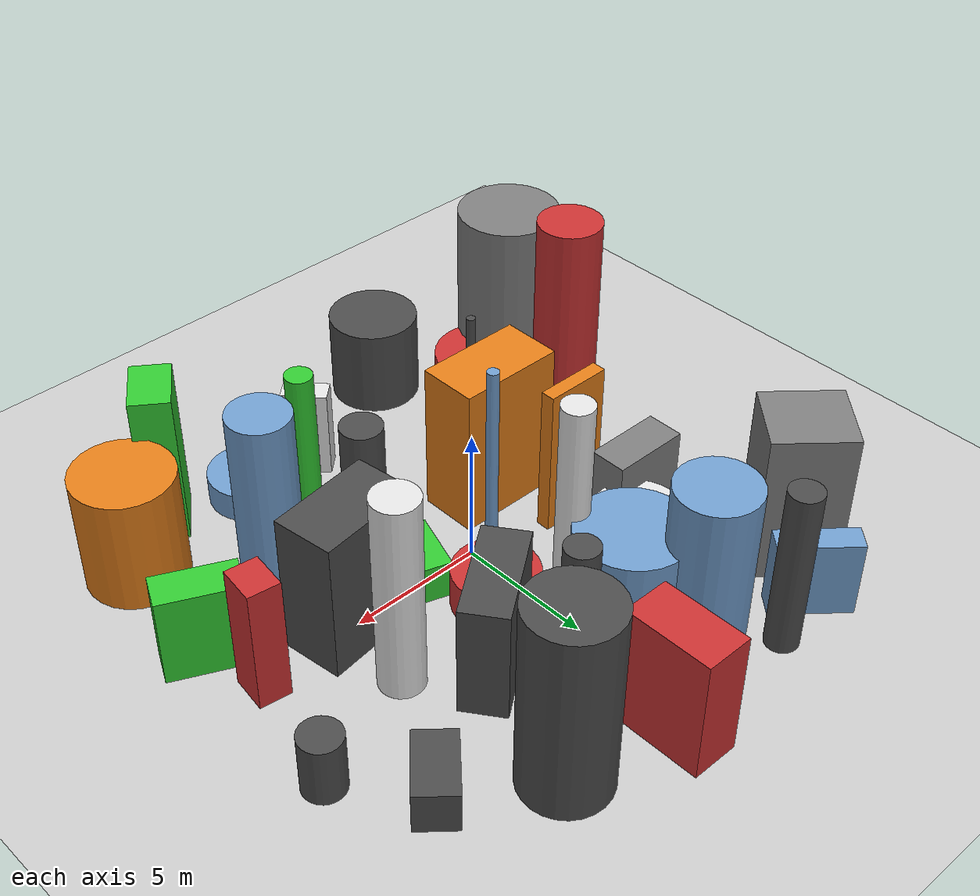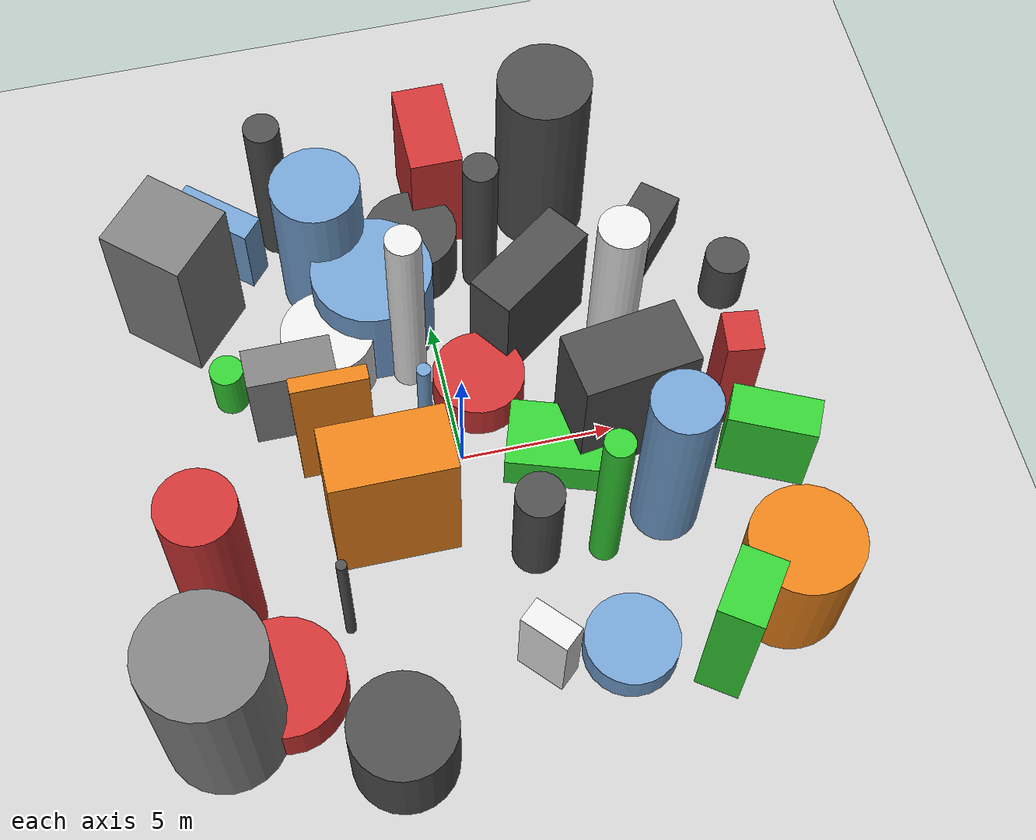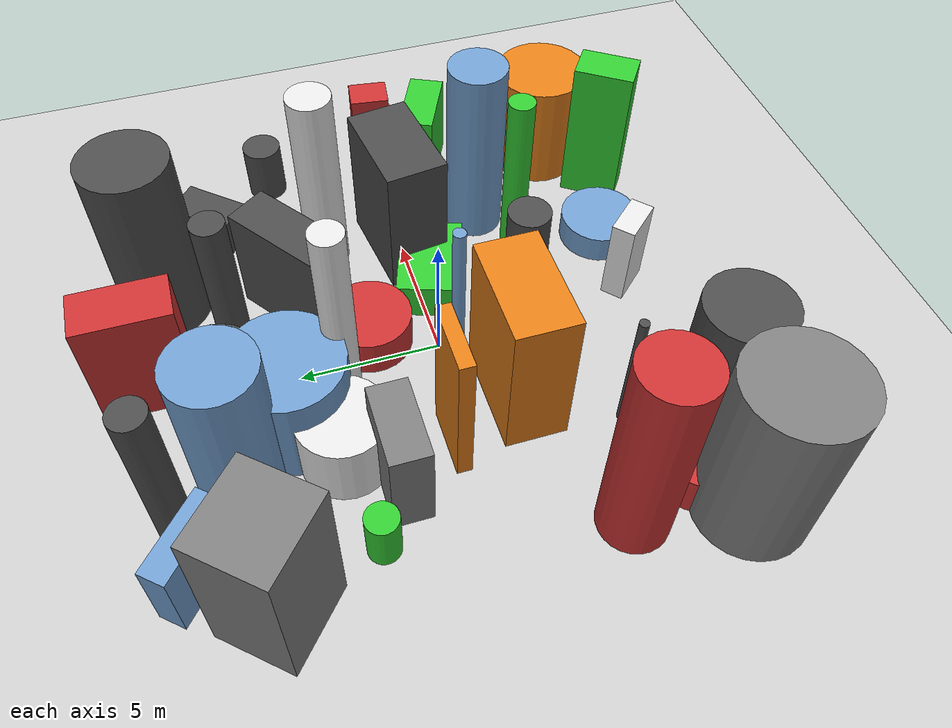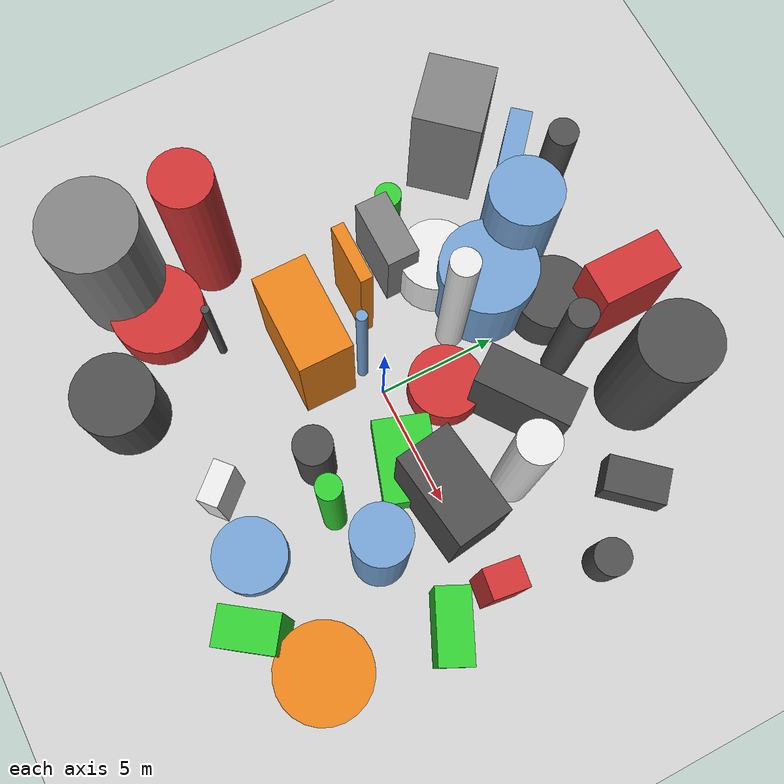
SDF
<?xml version='1.0'?>
<sdf version='1.6'>
  <world name='default'>
    <!-- Sun light -->
    <light name='sun' type='directional'>
      <cast_shadows>1</cast_shadows>
      <pose>0 0 10 0 0 0</pose>
      <diffuse>0.8 0.8 0.8 1</diffuse>
      <specular>0.2 0.2 0.2 1</specular>
      <attenuation>
        <range>1000</range>
        <constant>0.9</constant>
        <linear>0.01</linear>
        <quadratic>0.001</quadratic>
      </attenuation>
      <direction>-0.5 0.1 -0.9</direction>
    </light>

    <!-- Ground plane -->
    <model name='ground_plane'>
      <static>1</static>
      <link name='link'>
        <collision name='collision'>
          <geometry>
            <plane>
              <normal>0 0 1</normal>
              <size>100 100</size>
            </plane>
          </geometry>
          <surface>
            <contact>
              <collide_bitmask>65535</collide_bitmask>
              <ode/>
            </contact>
            <friction>
              <ode>
                <mu>100</mu>
                <mu2>50</mu2>
              </ode>
              <torsional><ode/></torsional>
            </friction>
            <bounce/>
          </surface>
          <max_contacts>10</max_contacts>
        </collision>
        <visual name='visual'>
          <cast_shadows>0</cast_shadows>
          <geometry>
            <plane>
              <normal>0 0 1</normal>
              <size>100 100</size>
            </plane>
          </geometry>
          <material>
            <script>
              <uri>file://media/materials/scripts/gazebo.material</uri>
              <n>Gazebo/Grey</n>
            </script>
          </material>
        </visual>
      </link>
    </model>

    <!-- Environment -->
    <magnetic_field>6e-06 2.3e-05 -4.2e-05</magnetic_field>
    <atmosphere type='adiabatic'/>
    <physics name='default_physics' default='0' type='ode'>
      <gravity>0 0 -9.8</gravity>
      <max_step_size>0.004</max_step_size>
      <real_time_factor>1</real_time_factor>
      <real_time_update_rate>250</real_time_update_rate>
    </physics>
    <scene>
      <ambient>0.4 0.4 0.4 1</ambient>
      <background>0.7 0.7 0.7 1</background>
      <shadows>1</shadows>
    </scene>
    <wind/>
    <spherical_coordinates>
      <surface_model>EARTH_WGS84</surface_model>
      <latitude_deg>0</latitude_deg>
      <longitude_deg>0</longitude_deg>
      <elevation>0</elevation>
      <heading_deg>0</heading_deg>
    </spherical_coordinates>

    <!-- ============ OBSTACLES (37) ============ -->
    <model name='obs_00'>
      <static>1</static>
      <link name='link'>
        <visual name='visual'>
          <geometry>
            <cylinder>
              <radius>1.5113</radius>
              <length>1.4360</length>
            </cylinder>
          </geometry>
          <material>
            <script>
              <n>Gazebo/Red</n>
              <uri>file://media/materials/scripts/gazebo.material</uri>
            </script>
            <ambient>0.8 0.2 0.2 1</ambient>
          </material>
        </visual>
        <collision name='collision'>
          <geometry>
            <cylinder>
              <radius>1.5113</radius>
              <length>1.4360</length>
            </cylinder>
          </geometry>
          <max_contacts>10</max_contacts>
          <surface>
            <contact><ode/></contact>
            <bounce/>
            <friction>
              <ode><mu>1</mu><mu2>1</mu2></ode>
              <torsional><ode/></torsional>
            </friction>
          </surface>
        </collision>
      </link>
      <pose>1.0329 2.2390 0.7180 0 0 2.7420</pose>
    </model>

    <model name='obs_01'>
      <static>1</static>
      <link name='link'>
        <visual name='visual'>
          <geometry>
            <cylinder>
              <radius>1.1876</radius>
              <length>7.9869</length>
            </cylinder>
          </geometry>
          <material>
            <script>
              <n>Gazebo/Red</n>
              <uri>file://media/materials/scripts/gazebo.material</uri>
            </script>
            <ambient>0.8 0.2 0.2 1</ambient>
          </material>
        </visual>
        <collision name='collision'>
          <geometry>
            <cylinder>
              <radius>1.1876</radius>
              <length>7.9869</length>
            </cylinder>
          </geometry>
          <max_contacts>10</max_contacts>
          <surface>
            <contact><ode/></contact>
            <bounce/>
            <friction>
              <ode><mu>1</mu><mu2>1</mu2></ode>
              <torsional><ode/></torsional>
            </friction>
          </surface>
        </collision>
      </link>
      <pose>-8.2757 -3.8142 3.9934 0 0 1.6295</pose>
    </model>

    <model name='obs_02'>
      <static>1</static>
      <link name='link'>
        <visual name='visual'>
          <geometry>
            <cylinder>
              <radius>0.7304</radius>
              <length>2.2123</length>
            </cylinder>
          </geometry>
          <material>
            <script>
              <n>Gazebo/DarkGrey</n>
              <uri>file://media/materials/scripts/gazebo.material</uri>
            </script>
            <ambient>0.3 0.3 0.3 1</ambient>
          </material>
        </visual>
        <collision name='collision'>
          <geometry>
            <cylinder>
              <radius>0.7304</radius>
              <length>2.2123</length>
            </cylinder>
          </geometry>
          <max_contacts>10</max_contacts>
          <surface>
            <contact><ode/></contact>
            <bounce/>
            <friction>
              <ode><mu>1</mu><mu2>1</mu2></ode>
              <torsional><ode/></torsional>
            </friction>
          </surface>
        </collision>
      </link>
      <pose>9.9919 4.3774 1.1061 0 0 1.6508</pose>
    </model>

    <model name='obs_03'>
      <static>1</static>
      <link name='link'>
        <visual name='visual'>
          <geometry>
            <box>
              <size>1.7400 3.2020 4.6046</size>
            </box>
          </geometry>
          <material>
            <script>
              <n>Gazebo/Red</n>
              <uri>file://media/materials/scripts/gazebo.material</uri>
            </script>
            <ambient>0.8 0.2 0.2 1</ambient>
          </material>
        </visual>
        <collision name='collision'>
          <geometry>
            <box>
              <size>1.7400 3.2020 4.6046</size>
            </box>
          </geometry>
          <max_contacts>10</max_contacts>
          <surface>
            <contact><ode/></contact>
            <bounce/>
            <friction>
              <ode><mu>1</mu><mu2>1</mu2></ode>
              <torsional><ode/></torsional>
            </friction>
          </surface>
        </collision>
      </link>
      <pose>1 10 2.3023 0 0 0</pose>
    </model>

    <model name='obs_04'>
      <static>1</static>
      <link name='link'>
        <visual name='visual'>
          <geometry>
            <box>
              <size>1.4253 2.1946 5.7867</size>
            </box>
          </geometry>
          <material>
            <script>
              <n>Gazebo/Green</n>
              <uri>file://media/materials/scripts/gazebo.material</uri>
            </script>
            <ambient>0.2 0.8 0.2 1</ambient>
          </material>
        </visual>
        <collision name='collision'>
          <geometry>
            <box>
              <size>1.4253 2.1946 5.7867</size>
            </box>
          </geometry>
          <max_contacts>10</max_contacts>
          <surface>
            <contact><ode/></contact>
            <bounce/>
            <friction>
              <ode><mu>1</mu><mu2>1</mu2></ode>
              <torsional><ode/></torsional>
            </friction>
          </surface>
        </collision>
      </link>
      <pose>6.4668 -8.5250 2.8933 0 0 2.5247</pose>
    </model>

    <model name='obs_05'>
      <static>1</static>
      <link name='link'>
        <visual name='visual'>
          <geometry>
            <cylinder>
              <radius>0.5660</radius>
              <length>7.8104</length>
            </cylinder>
          </geometry>
          <material>
            <script>
              <n>Gazebo/White</n>
              <uri>file://media/materials/scripts/gazebo.material</uri>
            </script>
            <ambient>0.9 0.9 0.9 1</ambient>
          </material>
        </visual>
        <collision name='collision'>
          <geometry>
            <cylinder>
              <radius>0.5660</radius>
              <length>7.8104</length>
            </cylinder>
          </geometry>
          <max_contacts>10</max_contacts>
          <surface>
            <contact><ode/></contact>
            <bounce/>
            <friction>
              <ode><mu>1</mu><mu2>1</mu2></ode>
              <torsional><ode/></torsional>
            </friction>
          </surface>
        </collision>
      </link>
      <pose>-1.0005 3.6022 3.9052 0 0 1.7533</pose>
    </model>

    <model name='obs_06'>
      <static>1</static>
      <link name='link'>
        <visual name='visual'>
          <geometry>
            <cylinder>
              <radius>1.4541</radius>
              <length>5.8317</length>
            </cylinder>
          </geometry>
          <material>
            <script>
              <n>Gazebo/Blue</n>
              <uri>file://media/materials/scripts/gazebo.material</uri>
            </script>
            <ambient>0.447 0.624 0.812 1</ambient>
          </material>
        </visual>
        <collision name='collision'>
          <geometry>
            <cylinder>
              <radius>1.4541</radius>
              <length>5.8317</length>
            </cylinder>
          </geometry>
          <max_contacts>10</max_contacts>
          <surface>
            <contact><ode/></contact>
            <bounce/>
            <friction>
              <ode><mu>1</mu><mu2>1</mu2></ode>
              <torsional><ode/></torsional>
            </friction>
          </surface>
        </collision>
      </link>
      <pose>-3.1097 7.5592 2.9158 0 0 2.4227</pose>
    </model>

    <model name='obs_07'>
      <static>1</static>
      <link name='link'>
        <visual name='visual'>
          <geometry>
            <cylinder>
              <radius>0.7953</radius>
              <length>7.5359</length>
            </cylinder>
          </geometry>
          <material>
            <script>
              <n>Gazebo/White</n>
              <uri>file://media/materials/scripts/gazebo.material</uri>
            </script>
            <ambient>0.9 0.9 0.9 1</ambient>
          </material>
        </visual>
        <collision name='collision'>
          <geometry>
            <cylinder>
              <radius>0.7953</radius>
              <length>7.5359</length>
            </cylinder>
          </geometry>
          <max_contacts>10</max_contacts>
          <surface>
            <contact><ode/></contact>
            <bounce/>
            <friction>
              <ode><mu>1</mu><mu2>1</mu2></ode>
              <torsional><ode/></torsional>
            </friction>
          </surface>
        </collision>
      </link>
      <pose>5.6053 2.7959 3.7680 0 0 0.9960</pose>
    </model>

    <model name='obs_08'>
      <static>1</static>
      <link name='link'>
        <visual name='visual'>
          <geometry>
            <box>
              <size>0.9266 2.8682 2.8985</size>
            </box>
          </geometry>
          <material>
            <script>
              <n>Gazebo/Blue</n>
              <uri>file://media/materials/scripts/gazebo.material</uri>
            </script>
            <ambient>0.447 0.624 0.812 1</ambient>
          </material>
        </visual>
        <collision name='collision'>
          <geometry>
            <box>
              <size>0.9266 2.8682 2.8985</size>
            </box>
          </geometry>
          <max_contacts>10</max_contacts>
          <surface>
            <contact><ode/></contact>
            <bounce/>
            <friction>
              <ode><mu>1</mu><mu2>1</mu2></ode>
              <torsional><ode/></torsional>
            </friction>
          </surface>
        </collision>
      </link>
      <pose>-6.3607 9.3253 1.4492 0 0 0.8591</pose>
    </model>

    <model name='obs_09'>
      <static>1</static>
      <link name='link'>
        <visual name='visual'>
          <geometry>
            <cylinder>
              <radius>1.9160</radius>
              <length>6.6323</length>
            </cylinder>
          </geometry>
          <material>
            <script>
              <n>Gazebo/Grey</n>
              <uri>file://media/materials/scripts/gazebo.material</uri>
            </script>
            <ambient>0.5 0.5 0.5 1</ambient>
          </material>
        </visual>
        <collision name='collision'>
          <geometry>
            <cylinder>
              <radius>1.9160</radius>
              <length>6.6323</length>
            </cylinder>
          </geometry>
          <max_contacts>10</max_contacts>
          <surface>
            <contact><ode/></contact>
            <bounce/>
            <friction>
              <ode><mu>1</mu><mu2>1</mu2></ode>
              <torsional><ode/></torsional>
            </friction>
          </surface>
        </collision>
      </link>
      <pose>-8.8917 -7.5168 3.3162 0 0 2.5710</pose>
    </model>

    <model name='obs_10'>
      <static>1</static>
      <link name='link'>
        <visual name='visual'>
          <geometry>
            <cylinder>
              <radius>1.9173</radius>
              <length>1.5532</length>
            </cylinder>
          </geometry>
          <material>
            <script>
              <n>Gazebo/Red</n>
              <uri>file://media/materials/scripts/gazebo.material</uri>
            </script>
            <ambient>0.8 0.2 0.2 1</ambient>
          </material>
        </visual>
        <collision name='collision'>
          <geometry>
            <cylinder>
              <radius>1.9173</radius>
              <length>1.5532</length>
            </cylinder>
          </geometry>
          <max_contacts>10</max_contacts>
          <surface>
            <contact><ode/></contact>
            <bounce/>
            <friction>
              <ode><mu>1</mu><mu2>1</mu2></ode>
              <torsional><ode/></torsional>
            </friction>
          </surface>
        </collision>
      </link>
      <pose>-6.9397 -6.7069 0.7766 0 0 0.1322</pose>
    </model>

    <model name='obs_11'>
      <static>1</static>
      <link name='link'>
        <visual name='visual'>
          <geometry>
            <cylinder>
              <radius>1.5326</radius>
              <length>2.4979</length>
            </cylinder>
          </geometry>
          <material>
            <script>
              <n>Gazebo/White</n>
              <uri>file://media/materials/scripts/gazebo.material</uri>
            </script>
            <ambient>0.9 0.9 0.9 1</ambient>
          </material>
        </visual>
        <collision name='collision'>
          <geometry>
            <cylinder>
              <radius>1.5326</radius>
              <length>2.4979</length>
            </cylinder>
          </geometry>
          <max_contacts>10</max_contacts>
          <surface>
            <contact><ode/></contact>
            <bounce/>
            <friction>
              <ode><mu>1</mu><mu2>1</mu2></ode>
              <torsional><ode/></torsional>
            </friction>
          </surface>
        </collision>
      </link>
      <pose>-3.5468 4.1866 1.2490 0 0 2.0608</pose>
    </model>

    <model name='obs_12'>
      <static>1</static>
      <link name='link'>
        <visual name='visual'>
          <geometry>
            <box>
              <size>2.4671 1.4507 1.5461</size>
            </box>
          </geometry>
          <material>
            <script>
              <n>Gazebo/DarkGrey</n>
              <uri>file://media/materials/scripts/gazebo.material</uri>
            </script>
            <ambient>0.3 0.3 0.3 1</ambient>
          </material>
        </visual>
        <collision name='collision'>
          <geometry>
            <box>
              <size>2.4671 1.4507 1.5461</size>
            </box>
          </geometry>
          <max_contacts>10</max_contacts>
          <surface>
            <contact><ode/></contact>
            <bounce/>
            <friction>
              <ode><mu>1</mu><mu2>1</mu2></ode>
              <torsional><ode/></torsional>
            </friction>
          </surface>
        </collision>
      </link>
      <pose>7.8985 6.9187 0.7731 0 0 0.8518</pose>
    </model>

    <model name='obs_13'>
      <static>1</static>
      <link name='link'>
        <visual name='visual'>
          <geometry>
            <box>
              <size>1.3486 2.8444 3.6552</size>
            </box>
          </geometry>
          <material>
            <script>
              <n>Gazebo/Grey</n>
              <uri>file://media/materials/scripts/gazebo.material</uri>
            </script>
            <ambient>0.5 0.5 0.5 1</ambient>
          </material>
        </visual>
        <collision name='collision'>
          <geometry>
            <box>
              <size>1.3486 2.8444 3.6552</size>
            </box>
          </geometry>
          <max_contacts>10</max_contacts>
          <surface>
            <contact><ode/></contact>
            <bounce/>
            <friction>
              <ode><mu>1</mu><mu2>1</mu2></ode>
              <torsional><ode/></torsional>
            </friction>
          </surface>
        </collision>
      </link>
      <pose>-4.9879 2.7011 1.8276 0 0 1.57</pose>
    </model>

    <model name='obs_14'>
      <static>1</static>
      <link name='link'>
        <visual name='visual'>
          <geometry>
            <box>
              <size>0.8507 1.6560 3.3620</size>
            </box>
          </geometry>
          <material>
            <script>
              <n>Gazebo/White</n>
              <uri>file://media/materials/scripts/gazebo.material</uri>
            </script>
            <ambient>0.9 0.9 0.9 1</ambient>
          </material>
        </visual>
        <collision name='collision'>
          <geometry>
            <box>
              <size>0.8507 1.6560 3.3620</size>
            </box>
          </geometry>
          <max_contacts>10</max_contacts>
          <surface>
            <contact><ode/></contact>
            <bounce/>
            <friction>
              <ode><mu>1</mu><mu2>1</mu2></ode>
              <torsional><ode/></torsional>
            </friction>
          </surface>
        </collision>
      </link>
      <pose>1.0168 -7.4966 1.6810 0 0 0.7315</pose>
    </model>

    <model name='obs_15'>
      <static>1</static>
      <link name='link'>
        <visual name='visual'>
          <geometry>
            <box>
              <size>0.5181 2.4262 5.6455</size>
            </box>
          </geometry>
          <material>
            <script>
              <n>Gazebo/Orange</n>
              <uri>file://media/materials/scripts/gazebo.material</uri>
            </script>
            <ambient>0.9 0.5 0.1 1</ambient>
          </material>
        </visual>
        <collision name='collision'>
          <geometry>
            <box>
              <size>0.5181 2.4262 5.6455</size>
            </box>
          </geometry>
          <max_contacts>10</max_contacts>
          <surface>
            <contact><ode/></contact>
            <bounce/>
            <friction>
              <ode><mu>1</mu><mu2>1</mu2></ode>
              <torsional><ode/></torsional>
            </friction>
          </surface>
        </collision>
      </link>
      <pose>-3.9435 0.6696 2.8227 0 0 1.57</pose>
    </model>

    <model name='obs_16'>
      <static>1</static>
      <link name='link'>
        <visual name='visual'>
          <geometry>
            <cylinder>
              <radius>1.7792</radius>
              <length>4.3299</length>
            </cylinder>
          </geometry>
          <material>
            <script>
              <n>Gazebo/Orange</n>
              <uri>file://media/materials/scripts/gazebo.material</uri>
            </script>
            <ambient>0.9 0.5 0.1 1</ambient>
          </material>
        </visual>
        <collision name='collision'>
          <geometry>
            <cylinder>
              <radius>1.7792</radius>
              <length>4.3299</length>
            </cylinder>
          </geometry>
          <max_contacts>10</max_contacts>
          <surface>
            <contact><ode/></contact>
            <bounce/>
            <friction>
              <ode><mu>1</mu><mu2>1</mu2></ode>
              <torsional><ode/></torsional>
            </friction>
          </surface>
        </collision>
      </link>
      <pose>8.8321 -6.9161 2.1649 0 0 2.0511</pose>
    </model>

    <model name='obs_17'>
      <static>1</static>
      <link name='link'>
        <visual name='visual'>
          <geometry>
            <box>
              <size>3.8737 1.6241 4.2295</size>
            </box>
          </geometry>
          <material>
            <script>
              <n>Gazebo/DarkGrey</n>
              <uri>file://media/materials/scripts/gazebo.material</uri>
            </script>
            <ambient>0.3 0.3 0.3 1</ambient>
          </material>
        </visual>
        <collision name='collision'>
          <geometry>
            <box>
              <size>3.8737 1.6241 4.2295</size>
            </box>
          </geometry>
          <max_contacts>10</max_contacts>
          <surface>
            <contact><ode/></contact>
            <bounce/>
            <friction>
              <ode><mu>1</mu><mu2>1</mu2></ode>
              <torsional><ode/></torsional>
            </friction>
          </surface>
        </collision>
      </link>
      <pose>3.1747 4.4127 2.1147 0 0 0.6266</pose>
    </model>

    <model name='obs_18'>
      <static>1</static>
      <link name='link'>
        <visual name='visual'>
          <geometry>
            <cylinder>
              <radius>0.5796</radius>
              <length>6.1708</length>
            </cylinder>
          </geometry>
          <material>
            <script>
              <n>Gazebo/DarkGrey</n>
              <uri>file://media/materials/scripts/gazebo.material</uri>
            </script>
            <ambient>0.3 0.3 0.3 1</ambient>
          </material>
        </visual>
        <collision name='collision'>
          <geometry>
            <cylinder>
              <radius>0.5796</radius>
              <length>6.1708</length>
            </cylinder>
          </geometry>
          <max_contacts>10</max_contacts>
          <surface>
            <contact><ode/></contact>
            <bounce/>
            <friction>
              <ode><mu>1</mu><mu2>1</mu2></ode>
              <torsional><ode/></torsional>
            </friction>
          </surface>
        </collision>
      </link>
      <pose>2.1028 6.8506 3.0854 0 0 2.0493</pose>
    </model>

    <model name='obs_19'>
      <static>1</static>
      <link name='link'>
        <visual name='visual'>
          <geometry>
            <cylinder>
              <radius>0.4739</radius>
              <length>7.1757</length>
            </cylinder>
          </geometry>
          <material>
            <script>
              <n>Gazebo/Green</n>
              <uri>file://media/materials/scripts/gazebo.material</uri>
            </script>
            <ambient>0.2 0.8 0.2 1</ambient>
          </material>
        </visual>
        <collision name='collision'>
          <geometry>
            <cylinder>
              <radius>0.4739</radius>
              <length>7.1757</length>
            </cylinder>
          </geometry>
          <max_contacts>10</max_contacts>
          <surface>
            <contact><ode/></contact>
            <bounce/>
            <friction>
              <ode><mu>1</mu><mu2>1</mu2></ode>
              <torsional><ode/></torsional>
            </friction>
          </surface>
        </collision>
      </link>
      <pose>3.6998 -4.0513 3.5879 0 0 2.8690</pose>
    </model>

    <model name='obs_20'>
      <static>1</static>
      <link name='link'>
        <visual name='visual'>
          <geometry>
            <cylinder>
              <radius>0.2172</radius>
              <length>6.8534</length>
            </cylinder>
          </geometry>
          <material>
            <script>
              <n>Gazebo/Blue</n>
              <uri>file://media/materials/scripts/gazebo.material</uri>
            </script>
            <ambient>0.447 0.624 0.812 1</ambient>
          </material>
        </visual>
        <collision name='collision'>
          <geometry>
            <cylinder>
              <radius>0.2172</radius>
              <length>6.8534</length>
            </cylinder>
          </geometry>
          <max_contacts>10</max_contacts>
          <surface>
            <contact><ode/></contact>
            <bounce/>
            <friction>
              <ode><mu>1</mu><mu2>1</mu2></ode>
              <torsional><ode/></torsional>
            </friction>
          </surface>
        </collision>
      </link>
      <pose>-1.2079 -0.3150 3.4267 0 0 2.9340</pose>
    </model>

    <model name='obs_21'>
      <static>1</static>
      <link name='link'>
        <visual name='visual'>
          <geometry>
            <cylinder>
              <radius>1.5357</radius>
              <length>7.1060</length>
            </cylinder>
          </geometry>
          <material>
            <script>
              <n>Gazebo/DarkGrey</n>
              <uri>file://media/materials/scripts/gazebo.material</uri>
            </script>
            <ambient>0.3 0.3 0.3 1</ambient>
          </material>
        </visual>
        <collision name='collision'>
          <geometry>
            <cylinder>
              <radius>1.5357</radius>
              <length>7.1060</length>
            </cylinder>
          </geometry>
          <max_contacts>10</max_contacts>
          <surface>
            <contact><ode/></contact>
            <bounce/>
            <friction>
              <ode><mu>1</mu><mu2>1</mu2></ode>
              <torsional><ode/></torsional>
            </friction>
          </surface>
        </collision>
      </link>
      <pose>4.6840 9 3.5530 0 0 0.5853</pose>
    </model>

    <model name='obs_22'>
      <static>1</static>
      <link name='link'>
        <visual name='visual'>
          <geometry>
            <cylinder>
              <radius>0.1671</radius>
              <length>4.9757</length>
            </cylinder>
          </geometry>
          <material>
            <script>
              <n>Gazebo/DarkGrey</n>
              <uri>file://media/materials/scripts/gazebo.material</uri>
            </script>
            <ambient>0.3 0.3 0.3 1</ambient>
          </material>
        </visual>
        <collision name='collision'>
          <geometry>
            <cylinder>
              <radius>0.1671</radius>
              <length>4.9757</length>
            </cylinder>
          </geometry>
          <max_contacts>10</max_contacts>
          <surface>
            <contact><ode/></contact>
            <bounce/>
            <friction>
              <ode><mu>1</mu><mu2>1</mu2></ode>
              <torsional><ode/></torsional>
            </friction>
          </surface>
        </collision>
      </link>
      <pose>-4.6506 -5.0416 2.4879 0 0 2.7544</pose>
    </model>

    <model name='obs_23'>
      <static>1</static>
      <link name='link'>
        <visual name='visual'>
          <geometry>
            <cylinder>
              <radius>0.7698</radius>
              <length>4.1804</length>
            </cylinder>
          </geometry>
          <material>
            <script>
              <n>Gazebo/DarkGrey</n>
              <uri>file://media/materials/scripts/gazebo.material</uri>
            </script>
            <ambient>0.3 0.3 0.3 1</ambient>
          </material>
        </visual>
        <collision name='collision'>
          <geometry>
            <cylinder>
              <radius>0.7698</radius>
              <length>4.1804</length>
            </cylinder>
          </geometry>
          <max_contacts>10</max_contacts>
          <surface>
            <contact><ode/></contact>
            <bounce/>
            <friction>
              <ode><mu>1</mu><mu2>1</mu2></ode>
              <torsional><ode/></torsional>
            </friction>
          </surface>
        </collision>
      </link>
      <pose>1.5537 -3.7457 2.0902 0 0 2.9168</pose>
    </model>

    <model name='obs_24'>
      <static>1</static>
      <link name='link'>
        <visual name='visual'>
          <geometry>
            <box>
              <size>2.2287 3.7850 5.2553</size>
            </box>
          </geometry>
          <material>
            <script>
              <n>Gazebo/DarkGrey</n>
              <uri>file://media/materials/scripts/gazebo.material</uri>
            </script>
            <ambient>0.3 0.3 0.3 1</ambient>
          </material>
        </visual>
        <collision name='collision'>
          <geometry>
            <box>
              <size>2.2287 3.7850 5.2553</size>
            </box>
          </geometry>
          <max_contacts>10</max_contacts>
          <surface>
            <contact><ode/></contact>
            <bounce/>
            <friction>
              <ode><mu>1</mu><mu2>1</mu2></ode>
              <torsional><ode/></torsional>
            </friction>
          </surface>
        </collision>
      </link>
      <pose>5.2624 -0.0347 2.6276 0 0 1.7068</pose>
    </model>

    <model name='obs_25'>
      <static>1</static>
      <link name='link'>
        <visual name='visual'>
          <geometry>
            <cylinder>
              <radius>1.6463</radius>
              <length>3.3148</length>
            </cylinder>
          </geometry>
          <material>
            <script>
              <n>Gazebo/DarkGrey</n>
              <uri>file://media/materials/scripts/gazebo.material</uri>
            </script>
            <ambient>0.3 0.3 0.3 1</ambient>
          </material>
        </visual>
        <collision name='collision'>
          <geometry>
            <cylinder>
              <radius>1.6463</radius>
              <length>3.3148</length>
            </cylinder>
          </geometry>
          <max_contacts>10</max_contacts>
          <surface>
            <contact><ode/></contact>
            <bounce/>
            <friction>
              <ode><mu>1</mu><mu2>1</mu2></ode>
              <torsional><ode/></torsional>
            </friction>
          </surface>
        </collision>
      </link>
      <pose>-3.8292 -9.5365 1.6574 0 0 0.8571</pose>
    </model>

    <model name='obs_26'>
      <static>1</static>
      <link name='link'>
        <visual name='visual'>
          <geometry>
            <box>
              <size>1.4004 1.1517 4.6831</size>
            </box>
          </geometry>
          <material>
            <script>
              <n>Gazebo/Red</n>
              <uri>file://media/materials/scripts/gazebo.material</uri>
            </script>
            <ambient>0.8 0.2 0.2 1</ambient>
          </material>
        </visual>
        <collision name='collision'>
          <geometry>
            <box>
              <size>1.4004 1.1517 4.6831</size>
            </box>
          </geometry>
          <max_contacts>10</max_contacts>
          <surface>
            <contact><ode/></contact>
            <bounce/>
            <friction>
              <ode><mu>1</mu><mu2>1</mu2></ode>
              <torsional><ode/></torsional>
            </friction>
          </surface>
        </collision>
      </link>
      <pose>8.9047 0.1089 2.3415 0 0 1.4417</pose>
    </model>

    <model name='obs_27'>
      <static>1</static>
      <link name='link'>
        <visual name='visual'>
          <geometry>
            <cylinder>
              <radius>1.5510</radius>
              <length>2.2285</length>
            </cylinder>
          </geometry>
          <material>
            <script>
              <n>Gazebo/DarkGrey</n>
              <uri>file://media/materials/scripts/gazebo.material</uri>
            </script>
            <ambient>0.3 0.3 0.3 1</ambient>
          </material>
        </visual>
        <collision name='collision'>
          <geometry>
            <cylinder>
              <radius>1.5510</radius>
              <length>2.2285</length>
            </cylinder>
          </geometry>
          <max_contacts>10</max_contacts>
          <surface>
            <contact><ode/></contact>
            <bounce/>
            <friction>
              <ode><mu>1</mu><mu2>1</mu2></ode>
              <torsional><ode/></torsional>
            </friction>
          </surface>
        </collision>
      </link>
      <pose>-0.1021 7.6468 1.1142 0 0 1.7837</pose>
    </model>

    <model name='obs_28'>
      <static>1</static>
      <link name='link'>
        <visual name='visual'>
          <geometry>
            <box>
              <size>3.3945 2.3035 1.4337</size>
            </box>
          </geometry>
          <material>
            <script>
              <n>Gazebo/Green</n>
              <uri>file://media/materials/scripts/gazebo.material</uri>
            </script>
            <ambient>0.2 0.8 0.2 1</ambient>
          </material>
        </visual>
        <collision name='collision'>
          <geometry>
            <box>
              <size>3.3945 2.3035 1.4337</size>
            </box>
          </geometry>
          <max_contacts>10</max_contacts>
          <surface>
            <contact><ode/></contact>
            <bounce/>
            <friction>
              <ode><mu>1</mu><mu2>1</mu2></ode>
              <torsional><ode/></torsional>
            </friction>
          </surface>
        </collision>
      </link>
      <pose>3.0852 -0.5883 0.7168 0 0 2.8181</pose>
    </model>

    <model name='obs_29'>
      <static>1</static>
      <link name='link'>
        <visual name='visual'>
          <geometry>
            <box>
              <size>3.9359 2.1711 5.6791</size>
            </box>
          </geometry>
          <material>
            <script>
              <n>Gazebo/Orange</n>
              <uri>file://media/materials/scripts/gazebo.material</uri>
            </script>
            <ambient>0.9 0.5 0.1 1</ambient>
          </material>
        </visual>
        <collision name='collision'>
          <geometry>
            <box>
              <size>3.9359 2.1711 5.6791</size>
            </box>
          </geometry>
          <max_contacts>10</max_contacts>
          <surface>
            <contact><ode/></contact>
            <bounce/>
            <friction>
              <ode><mu>1</mu><mu2>1</mu2></ode>
              <torsional><ode/></torsional>
            </friction>
          </surface>
        </collision>
      </link>
      <pose>-2.6813 -1.9884 2.8396 0 0 0</pose>
    </model>

    <model name='obs_30'>
      <static>1</static>
      <link name='link'>
        <visual name='visual'>
          <geometry>
            <cylinder>
              <radius>0.5857</radius>
              <length>6.2763</length>
            </cylinder>
          </geometry>
          <material>
            <script>
              <n>Gazebo/DarkGrey</n>
              <uri>file://media/materials/scripts/gazebo.material</uri>
            </script>
            <ambient>0.3 0.3 0.3 1</ambient>
          </material>
        </visual>
        <collision name='collision'>
          <geometry>
            <cylinder>
              <radius>0.5857</radius>
              <length>6.2763</length>
            </cylinder>
          </geometry>
          <max_contacts>10</max_contacts>
          <surface>
            <contact><ode/></contact>
            <bounce/>
            <friction>
              <ode><mu>1</mu><mu2>1</mu2></ode>
              <torsional><ode/></torsional>
            </friction>
          </surface>
        </collision>
      </link>
      <pose>-4.4056 9.7818 3.1381 0 0 0.8193</pose>
    </model>

    <model name='obs_31'>
      <static>1</static>
      <link name='link'>
        <visual name='visual'>
          <geometry>
            <cylinder>
              <radius>1.4873</radius>
              <length>1.0801</length>
            </cylinder>
          </geometry>
          <material>
            <script>
              <n>Gazebo/Blue</n>
              <uri>file://media/materials/scripts/gazebo.material</uri>
            </script>
            <ambient>0.447 0.624 0.812 1</ambient>
          </material>
        </visual>
        <collision name='collision'>
          <geometry>
            <cylinder>
              <radius>1.4873</radius>
              <length>1.0801</length>
            </cylinder>
          </geometry>
          <max_contacts>10</max_contacts>
          <surface>
            <contact><ode/></contact>
            <bounce/>
            <friction>
              <ode><mu>1</mu><mu2>1</mu2></ode>
              <torsional><ode/></torsional>
            </friction>
          </surface>
        </collision>
      </link>
      <pose>3.6080 -7.6238 0.5400 0 0 0.9486</pose>
    </model>

    <model name='obs_32'>
      <static>1</static>
      <link name='link'>
        <visual name='visual'>
          <geometry>
            <box>
              <size>1.3271 2.8373 3.3270</size>
            </box>
          </geometry>
          <material>
            <script>
              <n>Gazebo/Green</n>
              <uri>file://media/materials/scripts/gazebo.material</uri>
            </script>
            <ambient>0.2 0.8 0.2 1</ambient>
          </material>
        </visual>
        <collision name='collision'>
          <geometry>
            <box>
              <size>1.3271 2.8373 3.3270</size>
            </box>
          </geometry>
          <max_contacts>10</max_contacts>
          <surface>
            <contact><ode/></contact>
            <bounce/>
            <friction>
              <ode><mu>1</mu><mu2>1</mu2></ode>
              <torsional><ode/></torsional>
            </friction>
          </surface>
        </collision>
      </link>
      <pose>9.5017 -2.1219 1.6635 0 0 1.1296</pose>
    </model>

    <model name='obs_33'>
      <static>1</static>
      <link name='link'>
        <visual name='visual'>
          <geometry>
            <cylinder>
              <radius>1.0797</radius>
              <length>7.2658</length>
            </cylinder>
          </geometry>
          <material>
            <script>
              <n>Gazebo/Blue</n>
              <uri>file://media/materials/scripts/gazebo.material</uri>
            </script>
            <ambient>0.447 0.624 0.812 1</ambient>
          </material>
        </visual>
        <collision name='collision'>
          <geometry>
            <cylinder>
              <radius>1.0797</radius>
              <length>7.2658</length>
            </cylinder>
          </geometry>
          <max_contacts>10</max_contacts>
          <surface>
            <contact><ode/></contact>
            <bounce/>
            <friction>
              <ode><mu>1</mu><mu2>1</mu2></ode>
              <torsional><ode/></torsional>
            </friction>
          </surface>
        </collision>
      </link>
      <pose>5.8979 -3.2183 3.6329 0 0 1.2737</pose>
    </model>

    <model name='obs_34'>
      <static>1</static>
      <link name='link'>
        <visual name='visual'>
          <geometry>
            <box>
              <size>2.9160 2.7355 5.7032</size>
            </box>
          </geometry>
          <material>
            <script>
              <n>Gazebo/Grey</n>
              <uri>file://media/materials/scripts/gazebo.material</uri>
            </script>
            <ambient>0.5 0.5 0.5 1</ambient>
          </material>
        </visual>
        <collision name='collision'>
          <geometry>
            <box>
              <size>2.9160 2.7355 5.7032</size>
            </box>
          </geometry>
          <max_contacts>10</max_contacts>
          <surface>
            <contact><ode/></contact>
            <bounce/>
            <friction>
              <ode><mu>1</mu><mu2>1</mu2></ode>
              <torsional><ode/></torsional>
            </friction>
          </surface>
        </collision>
      </link>
      <pose>-8 7.1825 2.8516 0 0 2.4185</pose>
    </model>

    <model name='obs_35'>
      <static>1</static>
      <link name='link'>
        <visual name='visual'>
          <geometry>
            <cylinder>
              <radius>0.5554</radius>
              <length>1.9350</length>
            </cylinder>
          </geometry>
          <material>
            <script>
              <n>Gazebo/Green</n>
              <uri>file://media/materials/scripts/gazebo.material</uri>
            </script>
            <ambient>0.2 0.8 0.2 1</ambient>
          </material>
        </visual>
        <collision name='collision'>
          <geometry>
            <cylinder>
              <radius>0.5554</radius>
              <length>1.9350</length>
            </cylinder>
          </geometry>
          <max_contacts>10</max_contacts>
          <surface>
            <contact><ode/></contact>
            <bounce/>
            <friction>
              <ode><mu>1</mu><mu2>1</mu2></ode>
              <torsional><ode/></torsional>
            </friction>
          </surface>
        </collision>
      </link>
      <pose>-6.9714 3.8100 0.9675 0 0 1.9309</pose>
    </model>

    <model name='obs_36'>
      <static>1</static>
      <link name='link'>
        <visual name='visual'>
          <geometry>
            <cylinder>
              <radius>1.9794</radius>
              <length>3.6154</length>
            </cylinder>
          </geometry>
          <material>
            <script>
              <n>Gazebo/Blue</n>
              <uri>file://media/materials/scripts/gazebo.material</uri>
            </script>
            <ambient>0.447 0.624 0.812 1</ambient>
          </material>
        </visual>
        <collision name='collision'>
          <geometry>
            <cylinder>
              <radius>1.9794</radius>
              <length>3.6154</length>
            </cylinder>
          </geometry>
          <max_contacts>10</max_contacts>
          <surface>
            <contact><ode/></contact>
            <bounce/>
            <friction>
              <ode><mu>1</mu><mu2>1</mu2></ode>
              <torsional><ode/></torsional>
            </friction>
          </surface>
        </collision>
      </link>
      <pose>-1.7925 5.4994 1.8077 0 0 1.4294</pose>
    </model>

    <!-- GUI camera -->
    <gui fullscreen='0'>
      <camera name='user_camera'>
        <pose>-15 0 18 0 0.85 0.15</pose>
        <view_controller>orbit</view_controller>
        <projection_type>perspective</projection_type>
      </camera>
    </gui>
  </world>
</sdf>
